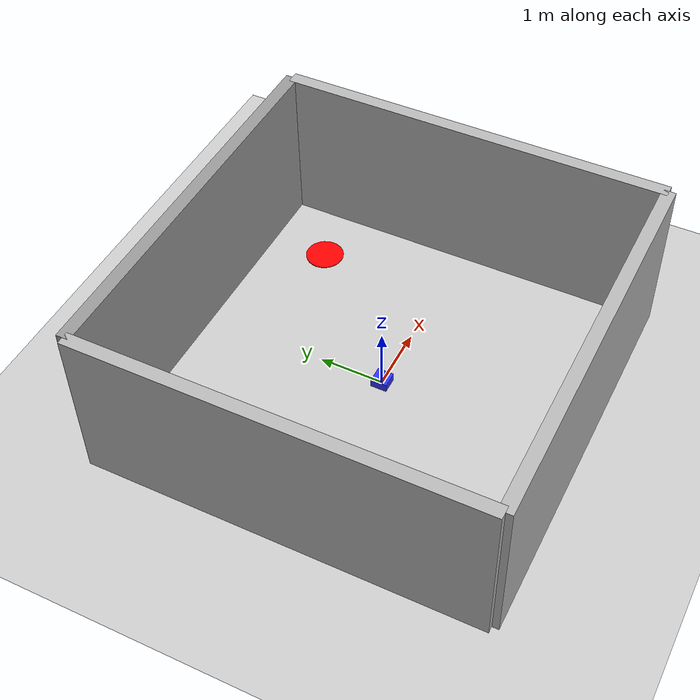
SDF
<?xml version="1.0"?>
<sdf version="1.6">
  <world name="square_arena_world">

    <!-- Sun and ground -->
    <include>
      <uri>model://sun</uri>
    </include>
    <include>
      <uri>model://ground_plane</uri>
    </include>

    <!-- Square Walls (6×6 m box, walls on all sides) -->
    <model name="square_walls">
      <static>true</static>

      <!-- Front wall -->
      <link name="wall_front">
        <pose>0 3 1.25 0 0 0</pose> <!-- half-side = 3 m -->
        <collision name="collision">
          <geometry>
            <box><size>6 0.2 2.5</size></box>
          </geometry>
        </collision>
        <visual name="visual">
          <geometry>
            <box><size>6 0.2 2.5</size></box>
          </geometry>
          <material>
            <ambient>0.5 0.5 0.5 1</ambient>
            <diffuse>0.6 0.6 0.6 1</diffuse>
          </material>
        </visual>
      </link>

      <!-- Back wall -->
      <link name="wall_back">
        <pose>0 -3 1.25 0 0 0</pose>
        <collision name="collision">
          <geometry>
            <box><size>6 0.2 2.5</size></box>
          </geometry>
        </collision>
        <visual name="visual">
          <geometry>
            <box><size>6 0.2 2.5</size></box>
          </geometry>
        </visual>
      </link>

      <!-- Left wall -->
      <link name="wall_left">
        <pose>-3 0 1.25 0 0 0</pose>
        <collision name="collision">
          <geometry>
            <box><size>0.2 6 2.5</size></box>
          </geometry>
        </collision>
        <visual name="visual">
          <geometry>
            <box><size>0.2 6 2.5</size></box>
          </geometry>
        </visual>
      </link>

      <!-- Right wall -->
      <link name="wall_right">
        <pose>3 0 1.25 0 0 0</pose>
        <collision name="collision">
          <geometry>
            <box><size>0.2 6 2.5</size></box>
          </geometry>
        </collision>
        <visual name="visual">
          <geometry>
            <box><size>0.2 6 2.5</size></box>
          </geometry>
        </visual>
      </link>
    </model>

    <model name="push_block">
      <static>false</static>

      <!-- Main body link -->
      <link name="block_link">
        <pose>0 0 0 0 0 0</pose>
        <collision name="collision">
          <geometry>
            <box><size>0.25 0.25 0.25</size></box>
          </geometry>
          <surface>
            <friction>
              <ode>
                <mu>0.1</mu>
                <mu2>0.1</mu2>
              </ode>
            </friction>
          </surface>
        </collision>
        <visual name="visual">
          <geometry>
            <box><size>0.25 0.25 0.25</size></box>
          </geometry>
          <material>
            <ambient>0.2 0.2 1 1</ambient>
            <diffuse>0.2 0.2 1 1</diffuse>
          </material>
        </visual>
      </link>

      <!-- Add a dummy second link to break single-link selection -->
      <link name="dummy_link">
        <pose>10 10 10 0 0 0</pose> <!-- Position it far away -->
      </link>

    </model>

    <!-- Target area (red disc) -->
    <model name="target_marker">
      <static>true</static>
      <link name="link">
        <pose>2 2 0.01 0 0 0</pose>
        <visual name="visual">
          <geometry>
            <cylinder>
              <radius>0.3</radius>
              <length>0.01</length>
            </cylinder>
          </geometry>
          <material>
            <ambient>1 0 0 1</ambient>
            <diffuse>1 0 0 1</diffuse>
          </material>
        </visual>
      </link>
    </model>

  </world>
</sdf>
